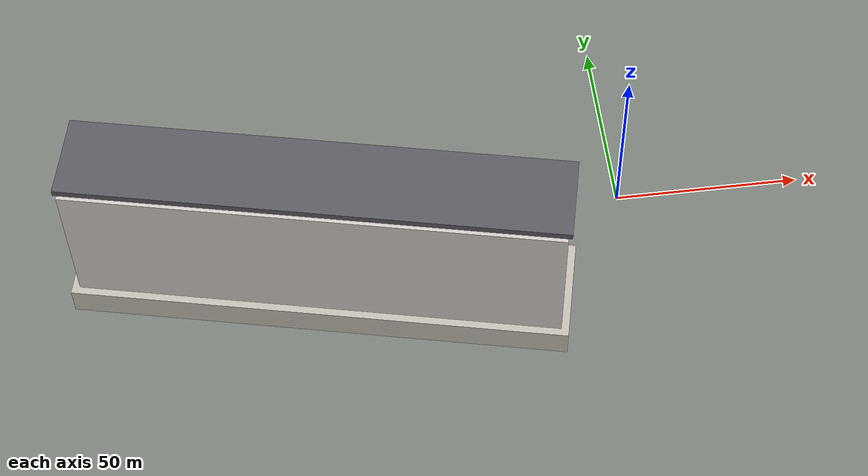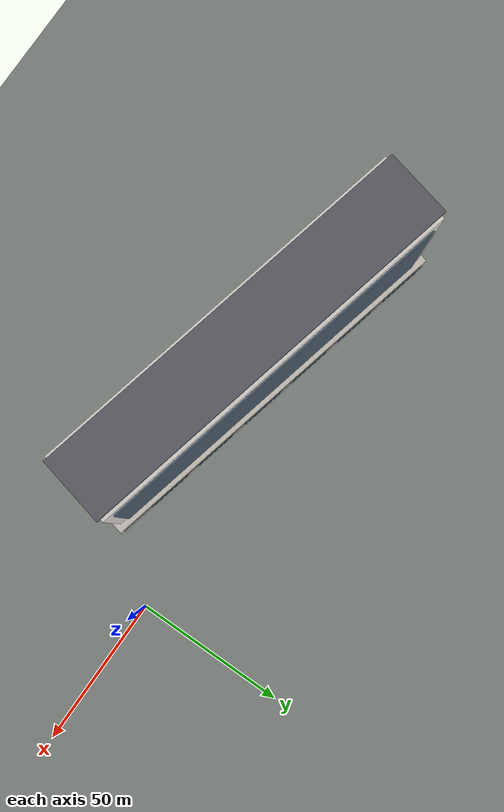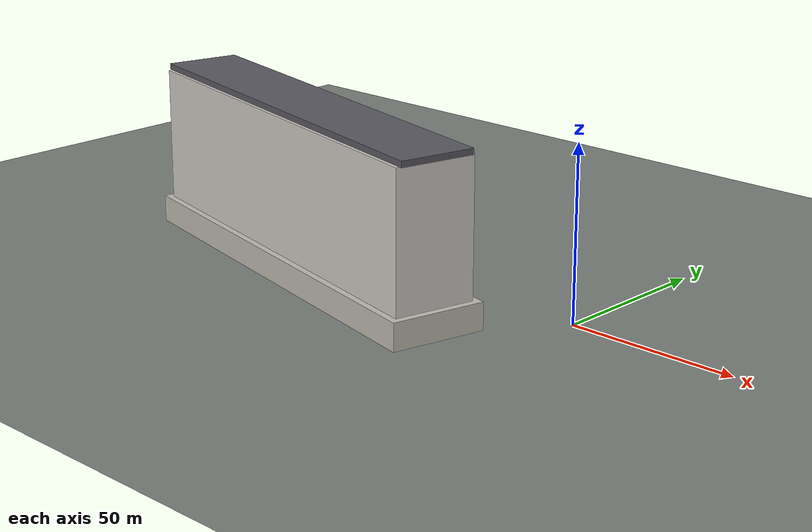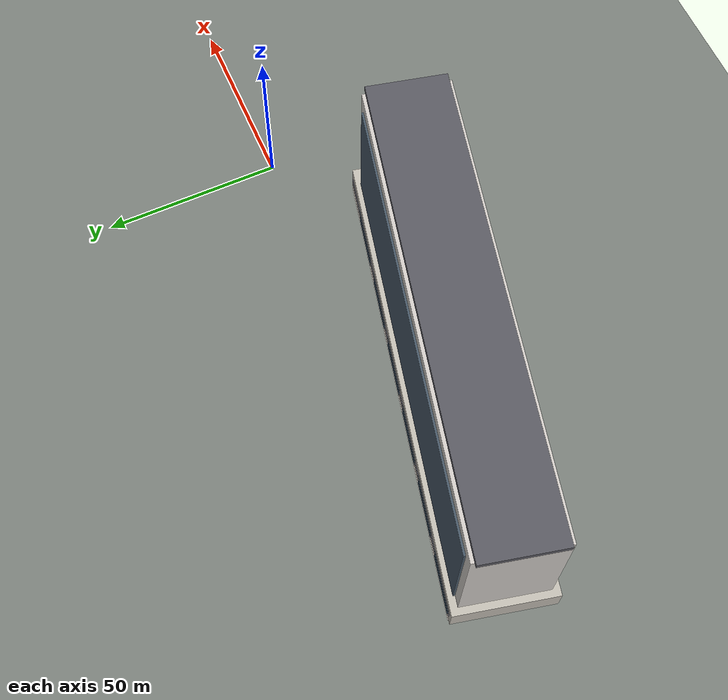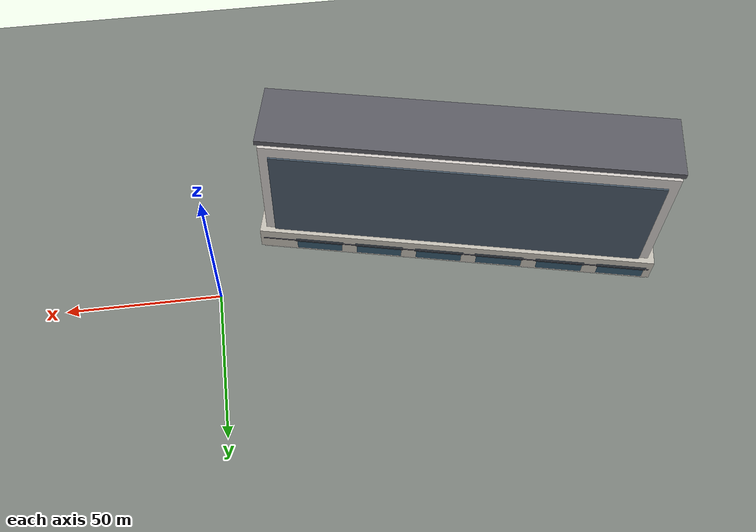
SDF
<sdf version="1.8">
 <world name="guanxin_world">
  <model name="ground_plane">
   <static>true</static>
   <pose>-100 480 0 0 0 0</pose>
   <link name="ground_link">
    <collision name="ground_col">
     <geometry><plane><normal>0 0 1</normal><size>1400 1400</size></plane></geometry>
     <surface>
      <friction><ode><mu>0.9</mu><mu2>0.9</mu2></ode></friction>
      <contact><ode><kd>100000</kd><kp>10000000</kp></ode></contact>
     </surface>
    </collision>
    <visual name="ground_vis">
     <geometry><plane><normal>0 0 1</normal><size>1400 1400</size></plane></geometry>
     <material><ambient>0.42 0.44 0.42 1</ambient><diffuse>0.48 0.50 0.48 1</diffuse></material>
    </visual>
   </link>
  </model>
  <include>
   <name>guangfu_south_strip_west</name>
   <uri>model://guangfu_south_strip_west</uri>
   <pose>-81.154 -18.305 0.0 0 0 -0.22568</pose>
  </include>
 </world>
</sdf>
